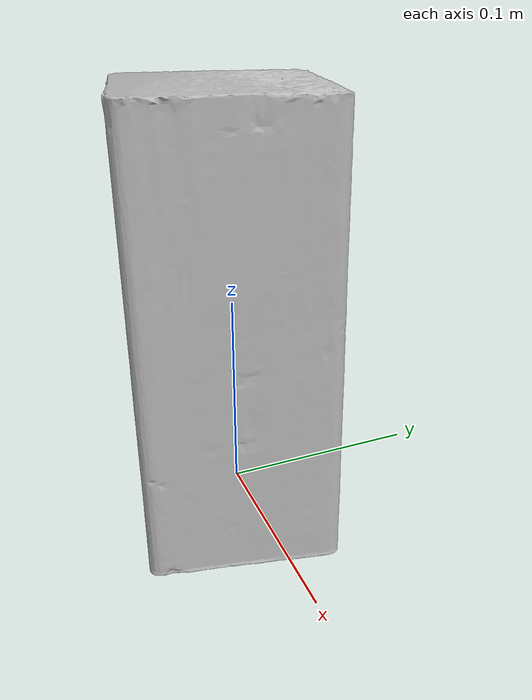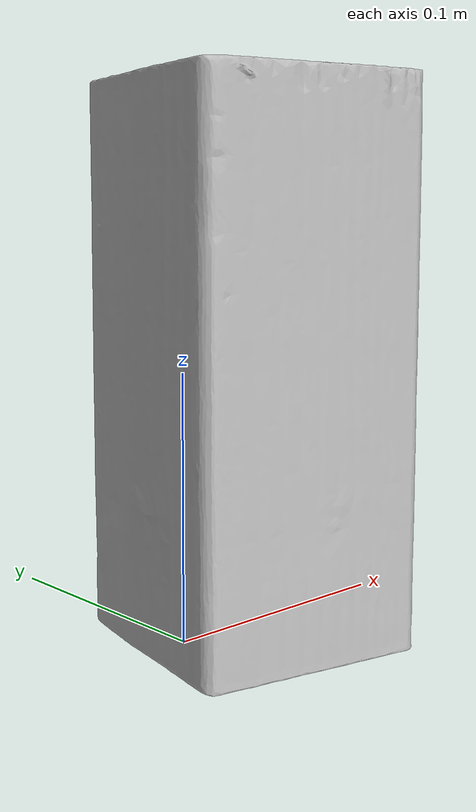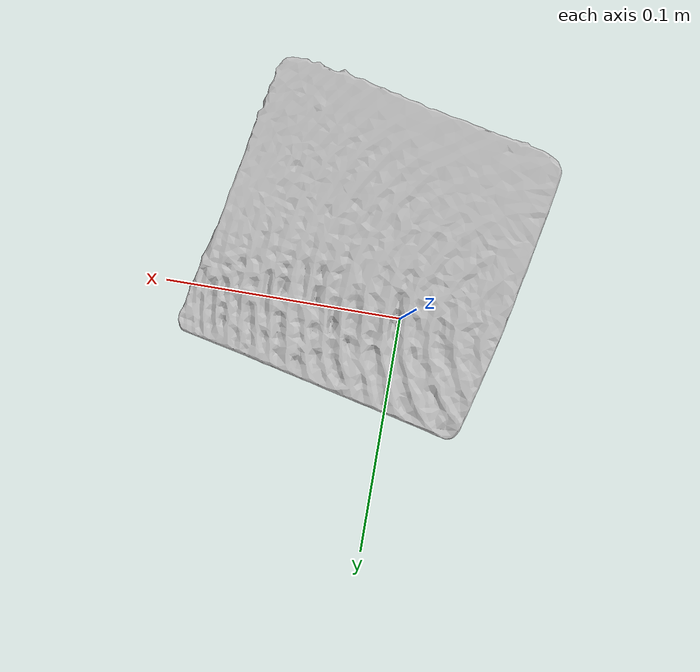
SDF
<?xml version='1.0'?>
<sdf version="1.4">
  <model name="wood_block">
    <static>false</static>
    <link name="link">
      <inertial>
        <pose>0.0233730518561954 -0.010273626224740965 0.10276919233489218 -3.136565007591221 0.006901927989382985 -1.9731263947914746</pose>
        <mass>0.0015785408903207848</mass>
        <inertia>
          <ixx>6.5318300660206704e-06</ixx>
          <ixy>1.2626988763098268e-21</ixy>
          <ixz>6.187373078042093e-22</ixz>
          <iyy>6.4967883219170695e-06</iyy>
          <iyz>-1.1620783666181942e-21</iyz>
          <izz>2.023521671878567e-06</izz>
        </inertia>
      </inertial>
      <collision name="collision">
        <geometry>
          <mesh>
            <!-- Use a downsampled mesh for collisions -->
            <uri>model://036_wood_block/google_16k/036_wood_block.obj</uri>
            </mesh>
        </geometry>
        <surface>
          <friction>
            <ode>
              <mu>0.9</mu>
              <mu2>0.9</mu2>
            </ode>
          </friction>
          <contact>
            <ode>
              <kp>1000000000000.0</kp>
              <kd>1</kd>
              <min_depth>0.0001</min_depth>
              <max_vel>0.01</max_vel>
            </ode>
          </contact>
          <bounce>
            <restitution_coefficient>0.1</restitution_coefficient>
            <threshold>1000.0</threshold>
          </bounce>
        </surface>
      </collision>
      <visual name="visual">
        <geometry>
          <mesh>
            <uri>model://036_wood_block/google_16k/036_wood_block.dae</uri>
            </mesh>
        </geometry>
      </visual>
    </link>
  </model>
</sdf>
